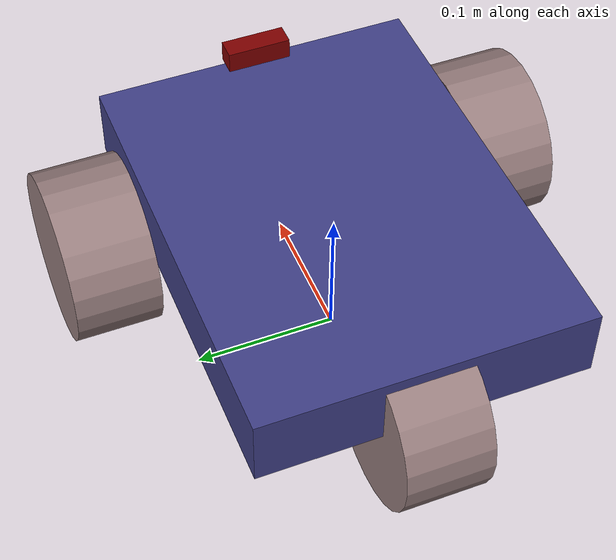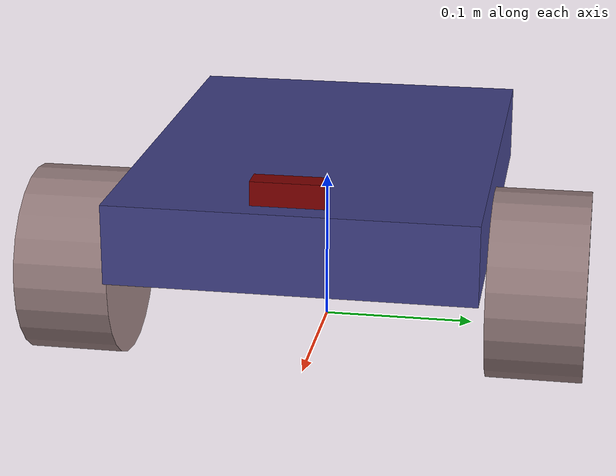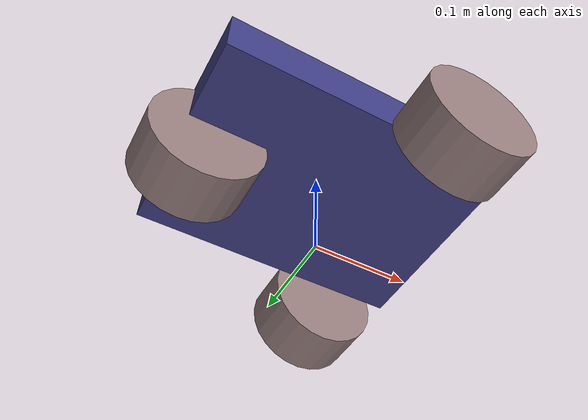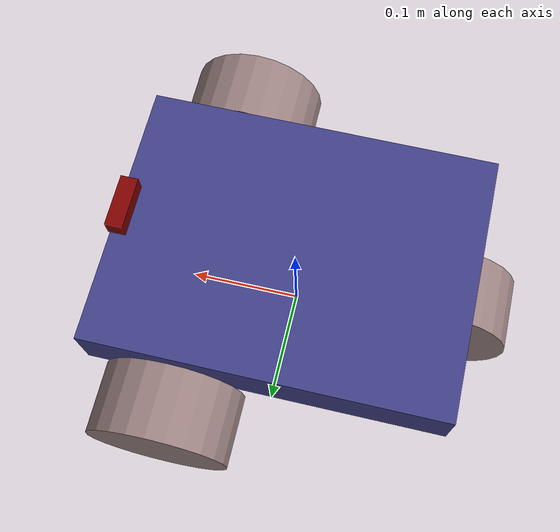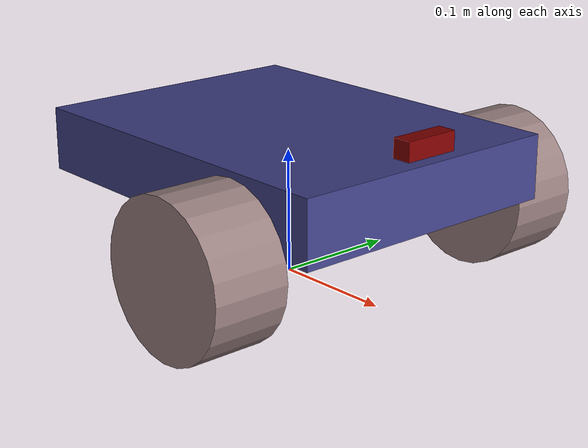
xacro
<?xml version="1.0"?>
<robot xmlns:xacro="http://ros.org/wiki/xacro" name="lysander">

  <xacro:include filename="$(find motor_controller)/urdf/wheel.urdf.xacro" />

  <xacro:property name="body_height" value="0.0508" />
  <xacro:property name="body_length" value="0.3048" />
  <xacro:property name="body_width" value="0.2286" />
  <xacro:property name="fwheel_offset" value="-0.13" />
  <xacro:property name="wheel_forward_of_center_distance" value=".0762" />
  <xacro:property name="motor_height" value="0.0254" />
  <xacro:property name="lidar_height" value="0.015" />
  <xacro:property name="lidar_length" value="0.045" />
  <xacro:property name="lidar_width" value="0.015" />
  <xacro:property name="wheel_radius" value="0.06" />
  <xacro:property name="wheel_spacer" value="0.00254" />
  <xacro:property name="wheel_width" value="0.060" />
  <xacro:property name="body_center_height" value="${wheel_radius+(motor_height/2)+(body_height/2)}" />

  <xacro:property name="lidar_x_offset" value="${(body_length/2)-(lidar_width/2)}" />
  <xacro:property name="lidar_z_offset" value="${body_center_height+(body_height/2)+(lidar_height/2)+.00508}" />

  <material name="base">
    <color rgba="0.25 0.25 0.53 1" />>
  </material>

  <material name="wheel">
    <color rgba="0.6 0.5 0.5 1" />
  </material>

  <!--xacro:include filename="$(find m1)/robots/m1.gazebo" /-->
  <gazebo>
    <plugin name="gazebo_ros_control" filename="libgazebo_ros_control.so">
      <robotSimType>gazebo_ros_control/DefaultRobotHWSim</robotSimType>
      <legacyModeNS>true</legacyModeNS>
    </plugin>
  </gazebo>

  <!-- Base footprint is on the ground under the robot -->
  <link name="base_footprint"/>

  <joint name="base_footprint_joint" type="fixed">
    <origin xyz="0 0 0" rpy="0 0 0" />
    <parent link="base_link" />
    <child link="base_footprint" />
  </joint>

  <gazebo reference="neato">
    <material>Gazebo/Blue</material>
  </gazebo>

  <!-- Parts -->
  <link name="base_link">
    <collision>
      <geometry>
        <box size="${body_length} ${body_width} 0.0508"/>
      </geometry>
      <origin rpy="0 0 0" xyz="0 0 ${body_center_height}"/>
    </collision>
    <visual>
      <geometry>
        <box size="${body_length} ${body_width} 0.0508"/>
      </geometry>
      <material name="base" />
      <origin rpy="0 0 0" xyz="0 0 ${body_center_height}"/>
    </visual>
    <inertial>
        <origin xyz="0 0 0" rpy="0 0 0" />
        <mass value="1" />
        <inertia
          ixx="1.0" ixy="0.0" ixz="0.0"
          iyy="1.0" iyz="0.0"
          izz="1.0" />
    </inertial>
  </link>

  <xacro:wheel wheel_prefix="front_left" is_caster="false" >
    <origin xyz="${wheel_forward_of_center_distance} ${(body_width/2)+wheel_spacer+(wheel_width/2)} ${wheel_radius}" rpy="0 0 0" />
  </xacro:wheel>
  <xacro:wheel wheel_prefix="front_right" is_caster="false" >
    <origin xyz="${wheel_forward_of_center_distance} -${(body_width/2)+wheel_spacer+(wheel_width/2)} ${wheel_radius}" rpy="0 0 0" />
  </xacro:wheel>
  <xacro:wheel wheel_prefix="caster" is_caster="true" >
    <origin xyz="${fwheel_offset} 0 ${wheel_radius}" rpy="0 0 0" />
  </xacro:wheel>

  <link name="neato">
    <collision>
      <geometry>
        <box size="${lidar_width} ${lidar_length} ${lidar_height}"/>
      </geometry>
      <origin rpy="0 0 0" xyz="0 0 0"/>
    </collision>
    <inertial>
        <origin xyz="0 0 0" rpy="0 0 0" />
        <mass value="1" />
        <inertia
          ixx="1.0" ixy="0.0" ixz="0.0"
          iyy="1.0" iyz="0.0"
          izz="1.0" />
    </inertial>
    <visual>
      <geometry>
        <box size="${lidar_width} ${lidar_length} ${lidar_height}"/>
      </geometry>
      <origin rpy="0 0 0" xyz="0 0 0"/>
      <material name="black">
        <color rgba="0.5 0 0 1"/>
      </material>
    </visual>
  </link>

  <joint name="base_to_neato" type="fixed">
    <parent link="base_link"/>
    <child link="neato"/>
    <origin xyz="${lidar_x_offset} 0  ${lidar_z_offset}" rpy="0 0 0"/>
  </joint>

</robot>

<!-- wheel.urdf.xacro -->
<robot xmlns:xacro="http://ros.org/wiki/xacro" name="wheel">

	<xacro:macro name="wheel" params="wheel_prefix is_caster *joint_pose">
		<link name="${wheel_prefix}_wheel_link">
			<inertial>
				<mass value="2.637" />
				<origin xyz="0 0 0" />
				<inertia  ixx="0.02467" ixy="0" ixz="0" iyy="0.04411" iyz="0" izz="0.02467" />
			</inertial>
			<visual>
				<origin xyz="0 0 0" rpy="1.5708 0 0" />
				<geometry>
			        <cylinder length="${wheel_width}" radius="${wheel_radius}" />
				</geometry>
		        <material name="wheel" />
			</visual>
			<collision>
				<origin xyz="0 0 0" rpy="1.5708 0 0" />
				<geometry>
			        <cylinder length="${wheel_width}" radius="${wheel_radius}" />
				</geometry>
			</collision>
		</link>

		<gazebo reference="${wheel_prefix}_wheel_link">
			<mu1 value="1.0"/>
			<mu2 value="1.0"/>
			<kp value="10000000.0" />
			<kd value="1.0" />
			<fdir1 value="1 0 0"/>
		    <material>Gazebo/Black</material>
		</gazebo>

		<joint name="${wheel_prefix}_wheel" type="continuous">
			<parent link="base_link"/>
			<child link="${wheel_prefix}_wheel_link"/>
			<xacro:insert_block name="joint_pose"/>
			<axis xyz="0 1 0" rpy="0 0 0" />
		</joint>

		<xacro:unless value="${is_caster}">
			<transmission name="${wheel_prefix}_wheel_trans" type="SimpleTransmission">
				<type>transmission_interface/SimpleTransmission</type>
				<actuator name="${wheel_prefix}_wheel_motor">
					<mechanicalReduction>1</mechanicalReduction>
				</actuator>
				<joint name="${wheel_prefix}_wheel">
					<hardwareInterface>hardware_interface/VelocityJointInterface</hardwareInterface>
				</joint>
			</transmission>
		</xacro:unless>

	</xacro:macro>
</robot>
